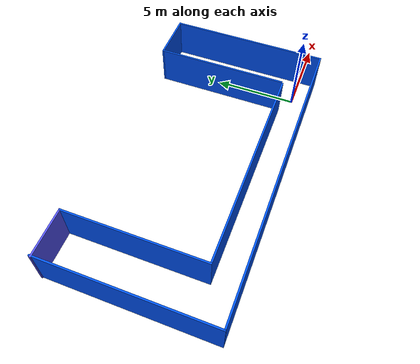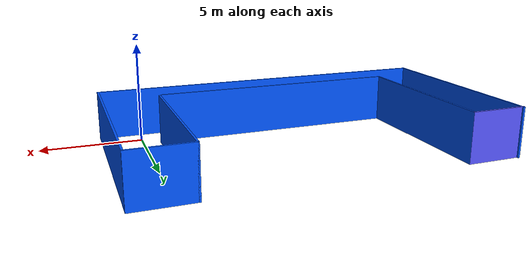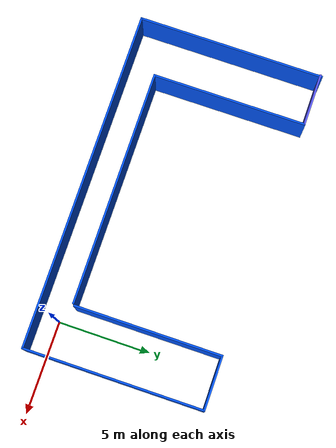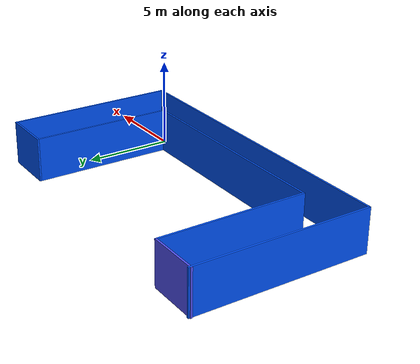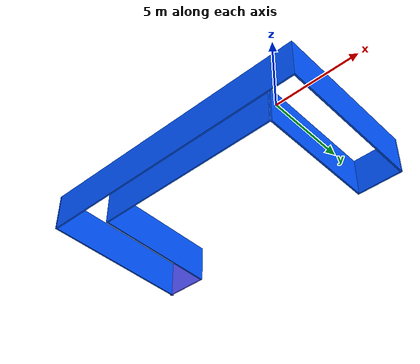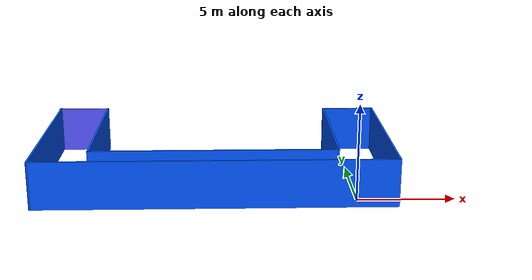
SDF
<?xml version='1.0'?>
<sdf version='1.6'>
  <model name='MyModel'>
    <pose frame=''>-7.22888 3.978 0 0 -0 0</pose>
    <link name='Wall_10'>
      <collision name='Wall_10_Collision'>
        <geometry>
          <box>
            <size>9.69991 0.1 2.5</size>
          </box>
        </geometry>
        <pose frame=''>0 0 1.25 0 -0 0</pose>
      </collision>
      <visual name='Wall_10_Visual'>
        <pose frame=''>0 0 1.25 0 -0 0</pose>
        <geometry>
          <box>
            <size>9.69991 0.1 2.5</size>
          </box>
        </geometry>
        <material>
          <script>
            <uri>file://media/materials/scripts/gazebo.material</uri>
            <name>Gazebo/Grey</name>
          </script>
          <ambient>0 0.333333 1 1</ambient>
        </material>
        <meta>
          <layer>0</layer>
        </meta>
      </visual>
      <pose frame=''>9.17088 -0.182 0 0 0 -1.5708</pose>
    </link>
    <link name='Wall_11'>
      <collision name='Wall_11_Collision'>
        <geometry>
          <box>
            <size>18.3995 0.1 2.5</size>
          </box>
        </geometry>
        <pose frame=''>0 0 1.25 0 -0 0</pose>
      </collision>
      <visual name='Wall_11_Visual'>
        <pose frame=''>0 0 1.25 0 -0 0</pose>
        <geometry>
          <box>
            <size>18.3995 0.1 2.5</size>
          </box>
        </geometry>
        <material>
          <script>
            <uri>file://media/materials/scripts/gazebo.material</uri>
            <name>Gazebo/Grey</name>
          </script>
          <ambient>0 0.333333 1 1</ambient>
        </material>
        <meta>
          <layer>0</layer>
        </meta>
      </visual>
      <pose frame=''>0.020879 -4.982 0 0 -0 3.14159</pose>
    </link>
    <link name='Wall_14'>
      <collision name='Wall_14_Collision'>
        <geometry>
          <box>
            <size>12.6996 0.1 2.5</size>
          </box>
        </geometry>
        <pose frame=''>0 0 1.25 0 -0 0</pose>
      </collision>
      <visual name='Wall_14_Visual'>
        <pose frame=''>0 0 1.25 0 -0 0</pose>
        <geometry>
          <box>
            <size>12.6996 0.1 2.5</size>
          </box>
        </geometry>
        <material>
          <script>
            <uri>file://media/materials/scripts/gazebo.material</uri>
            <name>Gazebo/Grey</name>
          </script>
          <ambient>0 0.333333 1 1</ambient>
        </material>
        <meta>
          <layer>0</layer>
        </meta>
      </visual>
      <pose frame=''>-0.091121 -3.324 0 0 -0 0</pose>
    </link>
    <link name='Wall_17'>
      <collision name='Wall_17_Collision'>
        <geometry>
          <box>
            <size>2.88 0.1 2.5</size>
          </box>
        </geometry>
        <pose frame=''>0 0 1.25 0 -0 0</pose>
      </collision>
      <visual name='Wall_17_Visual'>
        <pose frame=''>0 0 1.25 0 -0 0</pose>
        <geometry>
          <box>
            <size>2.88 0.1 2.5</size>
          </box>
        </geometry>
        <material>
          <script>
            <uri>file://media/materials/scripts/gazebo.material</uri>
            <name>Gazebo/Grey</name>
          </script>
          <ambient>0.333333 0.333333 1 1</ambient>
        </material>
        <meta>
          <layer>0</layer>
        </meta>
      </visual>
      <pose frame=''>-7.78112 4.899 0 0 -0 3.14159</pose>
    </link>
    <link name='Wall_3'>
      <collision name='Wall_3_Collision'>
        <geometry>
          <box>
            <size>10.064 0.1 2.5</size>
          </box>
        </geometry>
        <pose frame=''>0 0 1.25 0 -0 0</pose>
      </collision>
      <visual name='Wall_3_Visual'>
        <pose frame=''>0 0 1.25 0 -0 0</pose>
        <geometry>
          <box>
            <size>10.064 0.1 2.5</size>
          </box>
        </geometry>
        <material>
          <script>
            <uri>file://media/materials/scripts/gazebo.material</uri>
            <name>Gazebo/Grey</name>
          </script>
          <ambient>0 0.333333 1 1</ambient>
        </material>
        <meta>
          <layer>0</layer>
        </meta>
      </visual>
      <pose frame=''>-9.12512 0 0 0 0 -1.5716</pose>
    </link>
    <link name='Wall_6'>
      <collision name='Wall_6_Collision'>
        <geometry>
          <box>
            <size>8.32268 0.1 2.5</size>
          </box>
        </geometry>
        <pose frame=''>0 0 1.25 0 -0 0</pose>
      </collision>
      <visual name='Wall_6_Visual'>
        <pose frame=''>0 0 1.25 0 -0 0</pose>
        <geometry>
          <box>
            <size>8.32268 0.1 2.5</size>
          </box>
        </geometry>
        <material>
          <script>
            <uri>file://media/materials/scripts/gazebo.material</uri>
            <name>Gazebo/Grey</name>
          </script>
          <ambient>0 0.333333 1 1</ambient>
        </material>
        <meta>
          <layer>0</layer>
        </meta>
      </visual>
      <pose frame=''>-6.39112 0.7875 0 0 0 -1.5708</pose>
    </link>
    <link name='Wall_8'>
      <collision name='Wall_8_Collision'>
        <geometry>
          <box>
            <size>7.95 0.1 2.5</size>
          </box>
        </geometry>
        <pose frame=''>0 0 1.25 0 -0 0</pose>
      </collision>
      <visual name='Wall_8_Visual'>
        <pose frame=''>0 0 1.25 0 -0 0</pose>
        <geometry>
          <box>
            <size>7.95 0.1 2.5</size>
          </box>
        </geometry>
        <material>
          <script>
            <uri>file://media/materials/scripts/gazebo.material</uri>
            <name>Gazebo/Grey</name>
          </script>
          <ambient>0 0.333333 1 1</ambient>
        </material>
        <meta>
          <layer>0</layer>
        </meta>
      </visual>
      <pose frame=''>6.32088 0.693 0 0 -0 1.5708</pose>
    </link>
    <link name='Wall_9'>
      <collision name='Wall_9_Collision'>
        <geometry>
          <box>
            <size>2.95049 0.1 2.5</size>
          </box>
        </geometry>
        <pose frame=''>0 0 1.25 0 -0 0</pose>
      </collision>
      <visual name='Wall_9_Visual'>
        <pose frame=''>0 0 1.25 0 -0 0</pose>
        <geometry>
          <box>
            <size>2.95049 0.1 2.5</size>
          </box>
        </geometry>
        <material>
          <script>
            <uri>file://media/materials/scripts/gazebo.material</uri>
            <name>Gazebo/Grey</name>
          </script>
          <ambient>0 0.333333 1 1</ambient>
        </material>
        <meta>
          <layer>0</layer>
        </meta>
      </visual>
      <pose frame=''>7.74588 4.618 0 0 -0 0</pose>
    </link>
    <static>1</static>
  </model>
</sdf>
